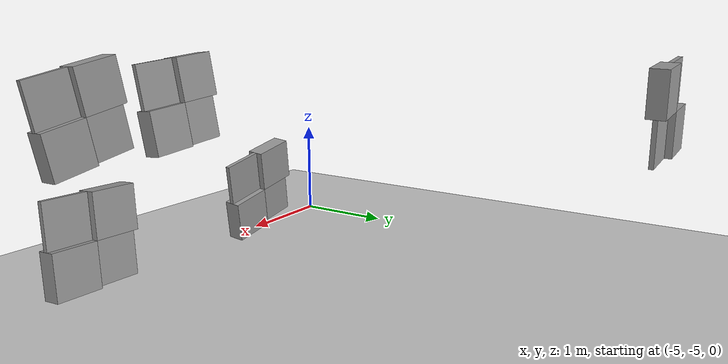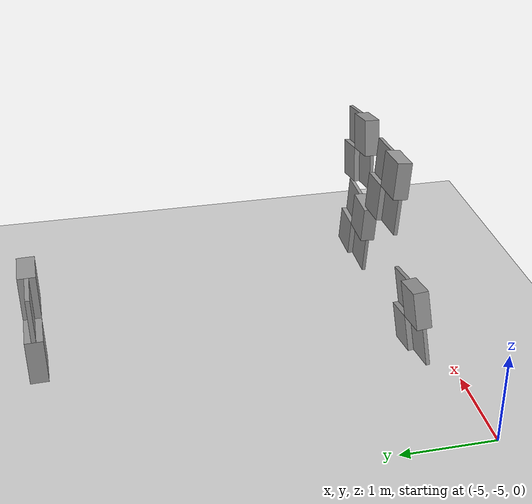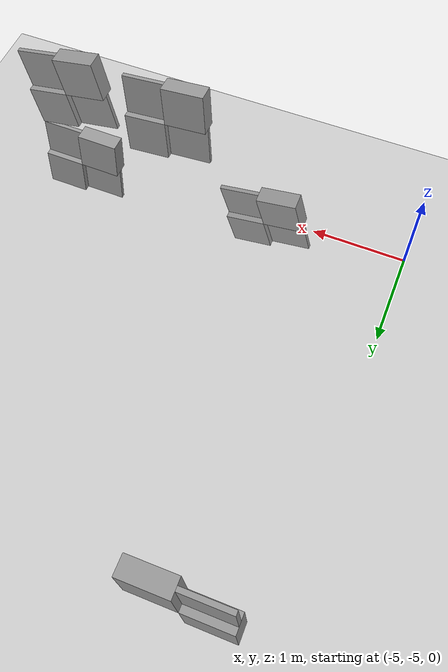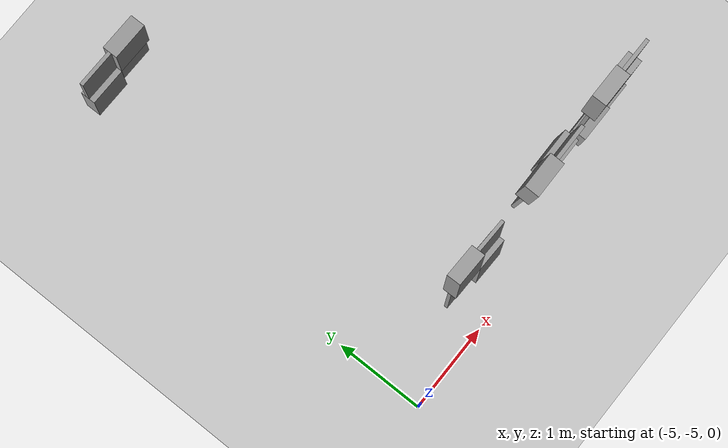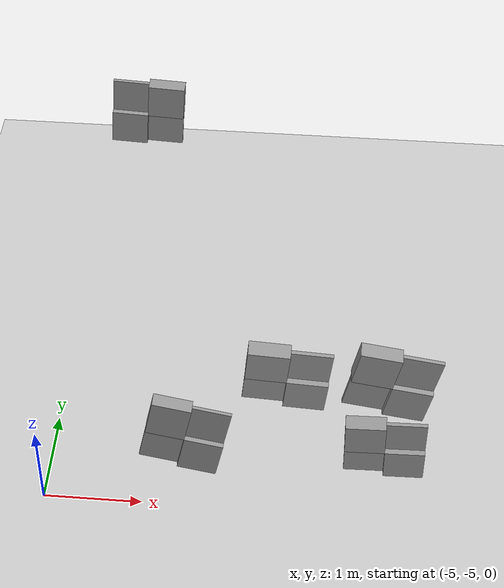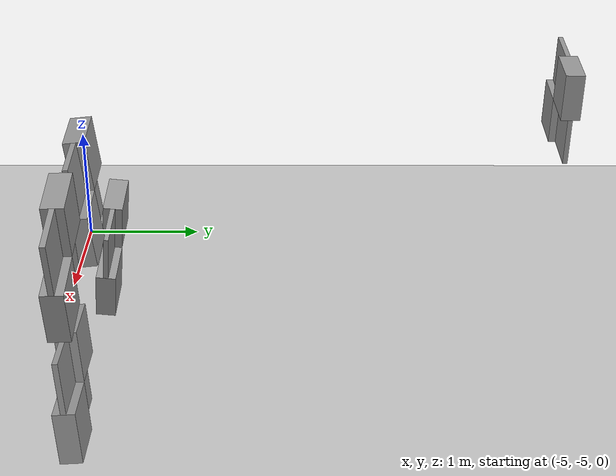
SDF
<sdf version="1.7">
 <world name="default">
  <model name="ground_plane">
   <static>1</static>
   <link name="link">
    <collision name="collision">
     <geometry><plane><normal>0 0 1</normal><size>100 100</size></plane></geometry>
     <surface>
      <contact><collide_bitmask>65535</collide_bitmask></contact>
      <friction><ode><mu>100</mu><mu2>50</mu2></ode></friction>
     </surface>
    </collision>
    <visual name="visual">
     <cast_shadows>0</cast_shadows>
     <geometry><plane><normal>0 0 1</normal><size>100 100</size></plane></geometry>
     <material>
      <script><uri>file://media/materials/scripts/gazebo.material</uri><name>Gazebo/Grey</name></script>
     </material>
    </visual>
   </link>
  </model>
  <model name="wall_slate_15">
   <static>1</static>
   <link name="link_0">
    <inertial><mass>1</mass></inertial>
    <gravity>0</gravity>
    <visual name="visual">
     <pose>0 0.2 0.2 0 -0 0</pose>
     <geometry><box><size>0.16 0.4 0.4</size></box></geometry>
     <material>
      <lighting>1</lighting>
      <script><uri>file://media/materials/scripts/gazebo.material</uri><name>Gazebo/Grey</name></script>
      <shader type="pixel"><normal_map>__default__</normal_map></shader>
      <ambient>0.3 0.3 0.3 1</ambient>
      <diffuse>0.7 0.7 0.7 1</diffuse>
      <specular>0.01 0.01 0.01 1</specular>
      <emissive>0 0 0 1</emissive>
     </material>
    </visual>
    <visual name="ModelPreview_0::link_0::visual_1">
     <pose>0 0.2 -0.2 0 -0 0</pose>
     <geometry><box><size>0.04 0.4 0.4</size></box></geometry>
     <material>
      <lighting>1</lighting>
      <script><uri>file://media/materials/scripts/gazebo.material</uri><name>Gazebo/Grey</name></script>
      <shader type="pixel"><normal_map>__default__</normal_map></shader>
      <ambient>0.3 0.3 0.3 1</ambient>
      <diffuse>0.7 0.7 0.7 1</diffuse>
      <specular>0.01 0.01 0.01 1</specular>
      <emissive>0 0 0 1</emissive>
     </material>
    </visual>
    <visual name="ModelPreview_0::link_0::visual_2">
     <pose>0 -0.2 0.2 0 -0 0</pose>
     <geometry><box><size>0.04 0.4 0.4</size></box></geometry>
     <material>
      <lighting>1</lighting>
      <script><uri>file://media/materials/scripts/gazebo.material</uri><name>Gazebo/Grey</name></script>
      <shader type="pixel"><normal_map>__default__</normal_map></shader>
      <ambient>0.3 0.3 0.3 1</ambient>
      <diffuse>0.7 0.7 0.7 1</diffuse>
      <specular>0.01 0.01 0.01 1</specular>
      <emissive>0 0 0 1</emissive>
     </material>
    </visual>
    <visual name="ModelPreview_0::link_0::visual_3">
     <pose>0 -0.2 -0.2 0 -0 0</pose>
     <geometry><box><size>0.16 0.4 0.4</size></box></geometry>
     <material>
      <lighting>1</lighting>
      <script><uri>file://media/materials/scripts/gazebo.material</uri><name>Gazebo/Grey</name></script>
      <shader type="pixel"><normal_map>__default__</normal_map></shader>
      <ambient>0.3 0.3 0.3 1</ambient>
      <diffuse>0.7 0.7 0.7 1</diffuse>
      <specular>0.01 0.01 0.01 1</specular>
      <emissive>0 0 0 1</emissive>
     </material>
    </visual>
    <collision name="collision_2">
     <pose>0 -0.2 0.2 0 -0 0</pose>
     <geometry><box><size>0.04 0.4 0.4</size></box></geometry>
     <surface>
      <friction>
       <ode><mu>1</mu><mu2>1</mu2><fdir1>0 0 0</fdir1><slip1>0</slip1><slip2>0</slip2></ode>
       <torsional>
        <coefficient>1</coefficient>
        <patch_radius>0</patch_radius>
        <surface_radius>0</surface_radius>
        <use_patch_radius>1</use_patch_radius>
        <ode><slip>0</slip></ode>
       </torsional>
      </friction>
      <bounce><restitution_coefficient>0</restitution_coefficient><threshold>1e+06</threshold></bounce>
      <contact>
       <collide_without_contact>0</collide_without_contact>
       <collide_without_contact_bitmask>1</collide_without_contact_bitmask>
       <collide_bitmask>1</collide_bitmask>
       <ode>
        <soft_cfm>0</soft_cfm>
        <soft_erp>0.2</soft_erp>
        <kp>1e+13</kp>
        <kd>1</kd>
        <max_vel>0.01</max_vel>
        <min_depth>0</min_depth>
       </ode>
       <bullet>
        <split_impulse>1</split_impulse>
        <split_impulse_penetration_threshold>-0.01</split_impulse_penetration_threshold>
        <soft_cfm>0</soft_cfm>
        <soft_erp>0.2</soft_erp>
        <kp>1e+13</kp>
        <kd>1</kd>
       </bullet>
      </contact>
     </surface>
    </collision>
    <collision name="collision_1">
     <pose>0 0.2 -0.2 0 -0 0</pose>
     <geometry><box><size>0.04 0.4 0.4</size></box></geometry>
     <surface>
      <friction>
       <ode><mu>1</mu><mu2>1</mu2><fdir1>0 0 0</fdir1><slip1>0</slip1><slip2>0</slip2></ode>
       <torsional>
        <coefficient>1</coefficient>
        <patch_radius>0</patch_radius>
        <surface_radius>0</surface_radius>
        <use_patch_radius>1</use_patch_radius>
        <ode><slip>0</slip></ode>
       </torsional>
      </friction>
      <bounce><restitution_coefficient>0</restitution_coefficient><threshold>1e+06</threshold></bounce>
      <contact>
       <collide_without_contact>0</collide_without_contact>
       <collide_without_contact_bitmask>1</collide_without_contact_bitmask>
       <collide_bitmask>1</collide_bitmask>
       <ode>
        <soft_cfm>0</soft_cfm>
        <soft_erp>0.2</soft_erp>
        <kp>1e+13</kp>
        <kd>1</kd>
        <max_vel>0.01</max_vel>
        <min_depth>0</min_depth>
       </ode>
       <bullet>
        <split_impulse>1</split_impulse>
        <split_impulse_penetration_threshold>-0.01</split_impulse_penetration_threshold>
        <soft_cfm>0</soft_cfm>
        <soft_erp>0.2</soft_erp>
        <kp>1e+13</kp>
        <kd>1</kd>
       </bullet>
      </contact>
     </surface>
    </collision>
    <collision name="collision_4">
     <pose>0 0.2 0.2 0 -0 0</pose>
     <geometry><box><size>0.16 0.4 0.4</size></box></geometry>
     <surface>
      <friction>
       <ode><mu>1</mu><mu2>1</mu2><fdir1>0 0 0</fdir1><slip1>0</slip1><slip2>0</slip2></ode>
       <torsional>
        <coefficient>1</coefficient>
        <patch_radius>0</patch_radius>
        <surface_radius>0</surface_radius>
        <use_patch_radius>1</use_patch_radius>
        <ode><slip>0</slip></ode>
       </torsional>
      </friction>
      <bounce><restitution_coefficient>0</restitution_coefficient><threshold>1e+06</threshold></bounce>
      <contact>
       <collide_without_contact>0</collide_without_contact>
       <collide_without_contact_bitmask>1</collide_without_contact_bitmask>
       <collide_bitmask>1</collide_bitmask>
       <ode>
        <soft_cfm>0</soft_cfm>
        <soft_erp>0.2</soft_erp>
        <kp>1e+13</kp>
        <kd>1</kd>
        <max_vel>0.01</max_vel>
        <min_depth>0</min_depth>
       </ode>
       <bullet>
        <split_impulse>1</split_impulse>
        <split_impulse_penetration_threshold>-0.01</split_impulse_penetration_threshold>
        <soft_cfm>0</soft_cfm>
        <soft_erp>0.2</soft_erp>
        <kp>1e+13</kp>
        <kd>1</kd>
       </bullet>
      </contact>
     </surface>
    </collision>
    <collision name="collision_3">
     <pose>0 -0.2 -0.2 0 -0 0</pose>
     <geometry><box><size>0.16 0.4 0.4</size></box></geometry>
     <surface>
      <friction>
       <ode><mu>1</mu><mu2>1</mu2><fdir1>0 0 0</fdir1><slip1>0</slip1><slip2>0</slip2></ode>
       <torsional>
        <coefficient>1</coefficient>
        <patch_radius>0</patch_radius>
        <surface_radius>0</surface_radius>
        <use_patch_radius>1</use_patch_radius>
        <ode><slip>0</slip></ode>
       </torsional>
      </friction>
      <bounce><restitution_coefficient>0</restitution_coefficient><threshold>1e+06</threshold></bounce>
      <contact>
       <collide_without_contact>0</collide_without_contact>
       <collide_without_contact_bitmask>1</collide_without_contact_bitmask>
       <collide_bitmask>1</collide_bitmask>
       <ode>
        <soft_cfm>0</soft_cfm>
        <soft_erp>0.2</soft_erp>
        <kp>1e+13</kp>
        <kd>1</kd>
        <max_vel>0.01</max_vel>
        <min_depth>0</min_depth>
       </ode>
       <bullet>
        <split_impulse>1</split_impulse>
        <split_impulse_penetration_threshold>-0.01</split_impulse_penetration_threshold>
        <soft_cfm>0</soft_cfm>
        <soft_erp>0.2</soft_erp>
        <kp>1e+13</kp>
        <kd>1</kd>
       </bullet>
      </contact>
     </surface>
    </collision>
   </link>
   <pose>-1.59149 -4.565 1.6 0.18 -0.02 1.5757</pose>
  </model>
  <model name="wall_slate_40">
   <static>1</static>
   <link name="link_0">
    <inertial><mass>1</mass></inertial>
    <gravity>0</gravity>
    <visual name="visual">
     <pose>0 0.2 0.2 0 -0 0</pose>
     <geometry><box><size>0.16 0.4 0.4</size></box></geometry>
     <material>
      <lighting>1</lighting>
      <script><uri>file://media/materials/scripts/gazebo.material</uri><name>Gazebo/Grey</name></script>
      <shader type="pixel"><normal_map>__default__</normal_map></shader>
      <ambient>0.3 0.3 0.3 1</ambient>
      <diffuse>0.7 0.7 0.7 1</diffuse>
      <specular>0.01 0.01 0.01 1</specular>
      <emissive>0 0 0 1</emissive>
     </material>
    </visual>
    <visual name="ModelPreview_0::link_0::visual_1">
     <pose>0 0.2 -0.2 0 -0 0</pose>
     <geometry><box><size>0.04 0.4 0.4</size></box></geometry>
     <material>
      <lighting>1</lighting>
      <script><uri>file://media/materials/scripts/gazebo.material</uri><name>Gazebo/Grey</name></script>
      <shader type="pixel"><normal_map>__default__</normal_map></shader>
      <ambient>0.3 0.3 0.3 1</ambient>
      <diffuse>0.7 0.7 0.7 1</diffuse>
      <specular>0.01 0.01 0.01 1</specular>
      <emissive>0 0 0 1</emissive>
     </material>
    </visual>
    <visual name="ModelPreview_0::link_0::visual_2">
     <pose>0 -0.2 0.2 0 -0 0</pose>
     <geometry><box><size>0.04 0.4 0.4</size></box></geometry>
     <material>
      <lighting>1</lighting>
      <script><uri>file://media/materials/scripts/gazebo.material</uri><name>Gazebo/Grey</name></script>
      <shader type="pixel"><normal_map>__default__</normal_map></shader>
      <ambient>0.3 0.3 0.3 1</ambient>
      <diffuse>0.7 0.7 0.7 1</diffuse>
      <specular>0.01 0.01 0.01 1</specular>
      <emissive>0 0 0 1</emissive>
     </material>
    </visual>
    <visual name="ModelPreview_0::link_0::visual_3">
     <pose>0 -0.2 -0.2 0 -0 0</pose>
     <geometry><box><size>0.16 0.4 0.4</size></box></geometry>
     <material>
      <lighting>1</lighting>
      <script><uri>file://media/materials/scripts/gazebo.material</uri><name>Gazebo/Grey</name></script>
      <shader type="pixel"><normal_map>__default__</normal_map></shader>
      <ambient>0.3 0.3 0.3 1</ambient>
      <diffuse>0.7 0.7 0.7 1</diffuse>
      <specular>0.01 0.01 0.01 1</specular>
      <emissive>0 0 0 1</emissive>
     </material>
    </visual>
    <collision name="collision_2">
     <pose>0 -0.2 0.2 0 -0 0</pose>
     <geometry><box><size>0.04 0.4 0.4</size></box></geometry>
     <surface>
      <friction>
       <ode><mu>1</mu><mu2>1</mu2><fdir1>0 0 0</fdir1><slip1>0</slip1><slip2>0</slip2></ode>
       <torsional>
        <coefficient>1</coefficient>
        <patch_radius>0</patch_radius>
        <surface_radius>0</surface_radius>
        <use_patch_radius>1</use_patch_radius>
        <ode><slip>0</slip></ode>
       </torsional>
      </friction>
      <bounce><restitution_coefficient>0</restitution_coefficient><threshold>1e+06</threshold></bounce>
      <contact>
       <collide_without_contact>0</collide_without_contact>
       <collide_without_contact_bitmask>1</collide_without_contact_bitmask>
       <collide_bitmask>1</collide_bitmask>
       <ode>
        <soft_cfm>0</soft_cfm>
        <soft_erp>0.2</soft_erp>
        <kp>1e+13</kp>
        <kd>1</kd>
        <max_vel>0.01</max_vel>
        <min_depth>0</min_depth>
       </ode>
       <bullet>
        <split_impulse>1</split_impulse>
        <split_impulse_penetration_threshold>-0.01</split_impulse_penetration_threshold>
        <soft_cfm>0</soft_cfm>
        <soft_erp>0.2</soft_erp>
        <kp>1e+13</kp>
        <kd>1</kd>
       </bullet>
      </contact>
     </surface>
    </collision>
    <collision name="collision_1">
     <pose>0 0.2 -0.2 0 -0 0</pose>
     <geometry><box><size>0.04 0.4 0.4</size></box></geometry>
     <surface>
      <friction>
       <ode><mu>1</mu><mu2>1</mu2><fdir1>0 0 0</fdir1><slip1>0</slip1><slip2>0</slip2></ode>
       <torsional>
        <coefficient>1</coefficient>
        <patch_radius>0</patch_radius>
        <surface_radius>0</surface_radius>
        <use_patch_radius>1</use_patch_radius>
        <ode><slip>0</slip></ode>
       </torsional>
      </friction>
      <bounce><restitution_coefficient>0</restitution_coefficient><threshold>1e+06</threshold></bounce>
      <contact>
       <collide_without_contact>0</collide_without_contact>
       <collide_without_contact_bitmask>1</collide_without_contact_bitmask>
       <collide_bitmask>1</collide_bitmask>
       <ode>
        <soft_cfm>0</soft_cfm>
        <soft_erp>0.2</soft_erp>
        <kp>1e+13</kp>
        <kd>1</kd>
        <max_vel>0.01</max_vel>
        <min_depth>0</min_depth>
       </ode>
       <bullet>
        <split_impulse>1</split_impulse>
        <split_impulse_penetration_threshold>-0.01</split_impulse_penetration_threshold>
        <soft_cfm>0</soft_cfm>
        <soft_erp>0.2</soft_erp>
        <kp>1e+13</kp>
        <kd>1</kd>
       </bullet>
      </contact>
     </surface>
    </collision>
    <collision name="collision_4">
     <pose>0 0.2 0.2 0 -0 0</pose>
     <geometry><box><size>0.16 0.4 0.4</size></box></geometry>
     <surface>
      <friction>
       <ode><mu>1</mu><mu2>1</mu2><fdir1>0 0 0</fdir1><slip1>0</slip1><slip2>0</slip2></ode>
       <torsional>
        <coefficient>1</coefficient>
        <patch_radius>0</patch_radius>
        <surface_radius>0</surface_radius>
        <use_patch_radius>1</use_patch_radius>
        <ode><slip>0</slip></ode>
       </torsional>
      </friction>
      <bounce><restitution_coefficient>0</restitution_coefficient><threshold>1e+06</threshold></bounce>
      <contact>
       <collide_without_contact>0</collide_without_contact>
       <collide_without_contact_bitmask>1</collide_without_contact_bitmask>
       <collide_bitmask>1</collide_bitmask>
       <ode>
        <soft_cfm>0</soft_cfm>
        <soft_erp>0.2</soft_erp>
        <kp>1e+13</kp>
        <kd>1</kd>
        <max_vel>0.01</max_vel>
        <min_depth>0</min_depth>
       </ode>
       <bullet>
        <split_impulse>1</split_impulse>
        <split_impulse_penetration_threshold>-0.01</split_impulse_penetration_threshold>
        <soft_cfm>0</soft_cfm>
        <soft_erp>0.2</soft_erp>
        <kp>1e+13</kp>
        <kd>1</kd>
       </bullet>
      </contact>
     </surface>
    </collision>
    <collision name="collision_3">
     <pose>0 -0.2 -0.2 0 -0 0</pose>
     <geometry><box><size>0.16 0.4 0.4</size></box></geometry>
     <surface>
      <friction>
       <ode><mu>1</mu><mu2>1</mu2><fdir1>0 0 0</fdir1><slip1>0</slip1><slip2>0</slip2></ode>
       <torsional>
        <coefficient>1</coefficient>
        <patch_radius>0</patch_radius>
        <surface_radius>0</surface_radius>
        <use_patch_radius>1</use_patch_radius>
        <ode><slip>0</slip></ode>
       </torsional>
      </friction>
      <bounce><restitution_coefficient>0</restitution_coefficient><threshold>1e+06</threshold></bounce>
      <contact>
       <collide_without_contact>0</collide_without_contact>
       <collide_without_contact_bitmask>1</collide_without_contact_bitmask>
       <collide_bitmask>1</collide_bitmask>
       <ode>
        <soft_cfm>0</soft_cfm>
        <soft_erp>0.2</soft_erp>
        <kp>1e+13</kp>
        <kd>1</kd>
        <max_vel>0.01</max_vel>
        <min_depth>0</min_depth>
       </ode>
       <bullet>
        <split_impulse>1</split_impulse>
        <split_impulse_penetration_threshold>-0.01</split_impulse_penetration_threshold>
        <soft_cfm>0</soft_cfm>
        <soft_erp>0.2</soft_erp>
        <kp>1e+13</kp>
        <kd>1</kd>
       </bullet>
      </contact>
     </surface>
    </collision>
   </link>
   <pose>-2.59149 -4.565 1.6 0.08 -0.1 1.5757</pose>
  </model>
  <model name="wall_slate_43">
   <static>1</static>
   <link name="link_0">
    <inertial><mass>1</mass></inertial>
    <gravity>0</gravity>
    <visual name="visual">
     <pose>0 0.2 0.2 0 -0 0</pose>
     <geometry><box><size>0.16 0.4 0.4</size></box></geometry>
     <material>
      <lighting>1</lighting>
      <script><uri>file://media/materials/scripts/gazebo.material</uri><name>Gazebo/Grey</name></script>
      <shader type="pixel"><normal_map>__default__</normal_map></shader>
      <ambient>0.3 0.3 0.3 1</ambient>
      <diffuse>0.7 0.7 0.7 1</diffuse>
      <specular>0.01 0.01 0.01 1</specular>
      <emissive>0 0 0 1</emissive>
     </material>
    </visual>
    <visual name="ModelPreview_0::link_0::visual_1">
     <pose>0 0.2 -0.2 0 -0 0</pose>
     <geometry><box><size>0.04 0.4 0.4</size></box></geometry>
     <material>
      <lighting>1</lighting>
      <script><uri>file://media/materials/scripts/gazebo.material</uri><name>Gazebo/Grey</name></script>
      <shader type="pixel"><normal_map>__default__</normal_map></shader>
      <ambient>0.3 0.3 0.3 1</ambient>
      <diffuse>0.7 0.7 0.7 1</diffuse>
      <specular>0.01 0.01 0.01 1</specular>
      <emissive>0 0 0 1</emissive>
     </material>
    </visual>
    <visual name="ModelPreview_0::link_0::visual_2">
     <pose>0 -0.2 0.2 0 -0 0</pose>
     <geometry><box><size>0.04 0.4 0.4</size></box></geometry>
     <material>
      <lighting>1</lighting>
      <script><uri>file://media/materials/scripts/gazebo.material</uri><name>Gazebo/Grey</name></script>
      <shader type="pixel"><normal_map>__default__</normal_map></shader>
      <ambient>0.3 0.3 0.3 1</ambient>
      <diffuse>0.7 0.7 0.7 1</diffuse>
      <specular>0.01 0.01 0.01 1</specular>
      <emissive>0 0 0 1</emissive>
     </material>
    </visual>
    <visual name="ModelPreview_0::link_0::visual_3">
     <pose>0 -0.2 -0.2 0 -0 0</pose>
     <geometry><box><size>0.16 0.4 0.4</size></box></geometry>
     <material>
      <lighting>1</lighting>
      <script><uri>file://media/materials/scripts/gazebo.material</uri><name>Gazebo/Grey</name></script>
      <shader type="pixel"><normal_map>__default__</normal_map></shader>
      <ambient>0.3 0.3 0.3 1</ambient>
      <diffuse>0.7 0.7 0.7 1</diffuse>
      <specular>0.01 0.01 0.01 1</specular>
      <emissive>0 0 0 1</emissive>
     </material>
    </visual>
    <collision name="collision_2">
     <pose>0 -0.2 0.2 0 -0 0</pose>
     <geometry><box><size>0.04 0.4 0.4</size></box></geometry>
     <surface>
      <friction>
       <ode><mu>1</mu><mu2>1</mu2><fdir1>0 0 0</fdir1><slip1>0</slip1><slip2>0</slip2></ode>
       <torsional>
        <coefficient>1</coefficient>
        <patch_radius>0</patch_radius>
        <surface_radius>0</surface_radius>
        <use_patch_radius>1</use_patch_radius>
        <ode><slip>0</slip></ode>
       </torsional>
      </friction>
      <bounce><restitution_coefficient>0</restitution_coefficient><threshold>1e+06</threshold></bounce>
      <contact>
       <collide_without_contact>0</collide_without_contact>
       <collide_without_contact_bitmask>1</collide_without_contact_bitmask>
       <collide_bitmask>1</collide_bitmask>
       <ode>
        <soft_cfm>0</soft_cfm>
        <soft_erp>0.2</soft_erp>
        <kp>1e+13</kp>
        <kd>1</kd>
        <max_vel>0.01</max_vel>
        <min_depth>0</min_depth>
       </ode>
       <bullet>
        <split_impulse>1</split_impulse>
        <split_impulse_penetration_threshold>-0.01</split_impulse_penetration_threshold>
        <soft_cfm>0</soft_cfm>
        <soft_erp>0.2</soft_erp>
        <kp>1e+13</kp>
        <kd>1</kd>
       </bullet>
      </contact>
     </surface>
    </collision>
    <collision name="collision_1">
     <pose>0 0.2 -0.2 0 -0 0</pose>
     <geometry><box><size>0.04 0.4 0.4</size></box></geometry>
     <surface>
      <friction>
       <ode><mu>1</mu><mu2>1</mu2><fdir1>0 0 0</fdir1><slip1>0</slip1><slip2>0</slip2></ode>
       <torsional>
        <coefficient>1</coefficient>
        <patch_radius>0</patch_radius>
        <surface_radius>0</surface_radius>
        <use_patch_radius>1</use_patch_radius>
        <ode><slip>0</slip></ode>
       </torsional>
      </friction>
      <bounce><restitution_coefficient>0</restitution_coefficient><threshold>1e+06</threshold></bounce>
      <contact>
       <collide_without_contact>0</collide_without_contact>
       <collide_without_contact_bitmask>1</collide_without_contact_bitmask>
       <collide_bitmask>1</collide_bitmask>
       <ode>
        <soft_cfm>0</soft_cfm>
        <soft_erp>0.2</soft_erp>
        <kp>1e+13</kp>
        <kd>1</kd>
        <max_vel>0.01</max_vel>
        <min_depth>0</min_depth>
       </ode>
       <bullet>
        <split_impulse>1</split_impulse>
        <split_impulse_penetration_threshold>-0.01</split_impulse_penetration_threshold>
        <soft_cfm>0</soft_cfm>
        <soft_erp>0.2</soft_erp>
        <kp>1e+13</kp>
        <kd>1</kd>
       </bullet>
      </contact>
     </surface>
    </collision>
    <collision name="collision_4">
     <pose>0 0.2 0.2 0 -0 0</pose>
     <geometry><box><size>0.16 0.4 0.4</size></box></geometry>
     <surface>
      <friction>
       <ode><mu>1</mu><mu2>1</mu2><fdir1>0 0 0</fdir1><slip1>0</slip1><slip2>0</slip2></ode>
       <torsional>
        <coefficient>1</coefficient>
        <patch_radius>0</patch_radius>
        <surface_radius>0</surface_radius>
        <use_patch_radius>1</use_patch_radius>
        <ode><slip>0</slip></ode>
       </torsional>
      </friction>
      <bounce><restitution_coefficient>0</restitution_coefficient><threshold>1e+06</threshold></bounce>
      <contact>
       <collide_without_contact>0</collide_without_contact>
       <collide_without_contact_bitmask>1</collide_without_contact_bitmask>
       <collide_bitmask>1</collide_bitmask>
       <ode>
        <soft_cfm>0</soft_cfm>
        <soft_erp>0.2</soft_erp>
        <kp>1e+13</kp>
        <kd>1</kd>
        <max_vel>0.01</max_vel>
        <min_depth>0</min_depth>
       </ode>
       <bullet>
        <split_impulse>1</split_impulse>
        <split_impulse_penetration_threshold>-0.01</split_impulse_penetration_threshold>
        <soft_cfm>0</soft_cfm>
        <soft_erp>0.2</soft_erp>
        <kp>1e+13</kp>
        <kd>1</kd>
       </bullet>
      </contact>
     </surface>
    </collision>
    <collision name="collision_3">
     <pose>0 -0.2 -0.2 0 -0 0</pose>
     <geometry><box><size>0.16 0.4 0.4</size></box></geometry>
     <surface>
      <friction>
       <ode><mu>1</mu><mu2>1</mu2><fdir1>0 0 0</fdir1><slip1>0</slip1><slip2>0</slip2></ode>
       <torsional>
        <coefficient>1</coefficient>
        <patch_radius>0</patch_radius>
        <surface_radius>0</surface_radius>
        <use_patch_radius>1</use_patch_radius>
        <ode><slip>0</slip></ode>
       </torsional>
      </friction>
      <bounce><restitution_coefficient>0</restitution_coefficient><threshold>1e+06</threshold></bounce>
      <contact>
       <collide_without_contact>0</collide_without_contact>
       <collide_without_contact_bitmask>1</collide_without_contact_bitmask>
       <collide_bitmask>1</collide_bitmask>
       <ode>
        <soft_cfm>0</soft_cfm>
        <soft_erp>0.2</soft_erp>
        <kp>1e+13</kp>
        <kd>1</kd>
        <max_vel>0.01</max_vel>
        <min_depth>0</min_depth>
       </ode>
       <bullet>
        <split_impulse>1</split_impulse>
        <split_impulse_penetration_threshold>-0.01</split_impulse_penetration_threshold>
        <soft_cfm>0</soft_cfm>
        <soft_erp>0.2</soft_erp>
        <kp>1e+13</kp>
        <kd>1</kd>
       </bullet>
      </contact>
     </surface>
    </collision>
   </link>
   <pose>-3.59149 -4.565 0.6 0.2 0.1 1.5757</pose>
  </model>
  <model name="wall_slate_67">
   <static>1</static>
   <link name="link_0">
    <inertial><mass>1</mass></inertial>
    <gravity>0</gravity>
    <visual name="visual">
     <pose>0 0.2 0.2 0 -0 0</pose>
     <geometry><box><size>0.16 0.4 0.4</size></box></geometry>
     <material>
      <lighting>1</lighting>
      <script><uri>file://media/materials/scripts/gazebo.material</uri><name>Gazebo/Grey</name></script>
      <shader type="pixel"><normal_map>__default__</normal_map></shader>
      <ambient>0.3 0.3 0.3 1</ambient>
      <diffuse>0.7 0.7 0.7 1</diffuse>
      <specular>0.01 0.01 0.01 1</specular>
      <emissive>0 0 0 1</emissive>
     </material>
    </visual>
    <visual name="ModelPreview_0::link_0::visual_1">
     <pose>0 0.2 -0.2 0 -0 0</pose>
     <geometry><box><size>0.04 0.4 0.4</size></box></geometry>
     <material>
      <lighting>1</lighting>
      <script><uri>file://media/materials/scripts/gazebo.material</uri><name>Gazebo/Grey</name></script>
      <shader type="pixel"><normal_map>__default__</normal_map></shader>
      <ambient>0.3 0.3 0.3 1</ambient>
      <diffuse>0.7 0.7 0.7 1</diffuse>
      <specular>0.01 0.01 0.01 1</specular>
      <emissive>0 0 0 1</emissive>
     </material>
    </visual>
    <visual name="ModelPreview_0::link_0::visual_2">
     <pose>0 -0.2 0.2 0 -0 0</pose>
     <geometry><box><size>0.04 0.4 0.4</size></box></geometry>
     <material>
      <lighting>1</lighting>
      <script><uri>file://media/materials/scripts/gazebo.material</uri><name>Gazebo/Grey</name></script>
      <shader type="pixel"><normal_map>__default__</normal_map></shader>
      <ambient>0.3 0.3 0.3 1</ambient>
      <diffuse>0.7 0.7 0.7 1</diffuse>
      <specular>0.01 0.01 0.01 1</specular>
      <emissive>0 0 0 1</emissive>
     </material>
    </visual>
    <visual name="ModelPreview_0::link_0::visual_3">
     <pose>0 -0.2 -0.2 0 -0 0</pose>
     <geometry><box><size>0.16 0.4 0.4</size></box></geometry>
     <material>
      <lighting>1</lighting>
      <script><uri>file://media/materials/scripts/gazebo.material</uri><name>Gazebo/Grey</name></script>
      <shader type="pixel"><normal_map>__default__</normal_map></shader>
      <ambient>0.3 0.3 0.3 1</ambient>
      <diffuse>0.7 0.7 0.7 1</diffuse>
      <specular>0.01 0.01 0.01 1</specular>
      <emissive>0 0 0 1</emissive>
     </material>
    </visual>
    <collision name="collision_2">
     <pose>0 -0.2 0.2 0 -0 0</pose>
     <geometry><box><size>0.04 0.4 0.4</size></box></geometry>
     <surface>
      <friction>
       <ode><mu>1</mu><mu2>1</mu2><fdir1>0 0 0</fdir1><slip1>0</slip1><slip2>0</slip2></ode>
       <torsional>
        <coefficient>1</coefficient>
        <patch_radius>0</patch_radius>
        <surface_radius>0</surface_radius>
        <use_patch_radius>1</use_patch_radius>
        <ode><slip>0</slip></ode>
       </torsional>
      </friction>
      <bounce><restitution_coefficient>0</restitution_coefficient><threshold>1e+06</threshold></bounce>
      <contact>
       <collide_without_contact>0</collide_without_contact>
       <collide_without_contact_bitmask>1</collide_without_contact_bitmask>
       <collide_bitmask>1</collide_bitmask>
       <ode>
        <soft_cfm>0</soft_cfm>
        <soft_erp>0.2</soft_erp>
        <kp>1e+13</kp>
        <kd>1</kd>
        <max_vel>0.01</max_vel>
        <min_depth>0</min_depth>
       </ode>
       <bullet>
        <split_impulse>1</split_impulse>
        <split_impulse_penetration_threshold>-0.01</split_impulse_penetration_threshold>
        <soft_cfm>0</soft_cfm>
        <soft_erp>0.2</soft_erp>
        <kp>1e+13</kp>
        <kd>1</kd>
       </bullet>
      </contact>
     </surface>
    </collision>
    <collision name="collision_1">
     <pose>0 0.2 -0.2 0 -0 0</pose>
     <geometry><box><size>0.04 0.4 0.4</size></box></geometry>
     <surface>
      <friction>
       <ode><mu>1</mu><mu2>1</mu2><fdir1>0 0 0</fdir1><slip1>0</slip1><slip2>0</slip2></ode>
       <torsional>
        <coefficient>1</coefficient>
        <patch_radius>0</patch_radius>
        <surface_radius>0</surface_radius>
        <use_patch_radius>1</use_patch_radius>
        <ode><slip>0</slip></ode>
       </torsional>
      </friction>
      <bounce><restitution_coefficient>0</restitution_coefficient><threshold>1e+06</threshold></bounce>
      <contact>
       <collide_without_contact>0</collide_without_contact>
       <collide_without_contact_bitmask>1</collide_without_contact_bitmask>
       <collide_bitmask>1</collide_bitmask>
       <ode>
        <soft_cfm>0</soft_cfm>
        <soft_erp>0.2</soft_erp>
        <kp>1e+13</kp>
        <kd>1</kd>
        <max_vel>0.01</max_vel>
        <min_depth>0</min_depth>
       </ode>
       <bullet>
        <split_impulse>1</split_impulse>
        <split_impulse_penetration_threshold>-0.01</split_impulse_penetration_threshold>
        <soft_cfm>0</soft_cfm>
        <soft_erp>0.2</soft_erp>
        <kp>1e+13</kp>
        <kd>1</kd>
       </bullet>
      </contact>
     </surface>
    </collision>
    <collision name="collision_4">
     <pose>0 0.2 0.2 0 -0 0</pose>
     <geometry><box><size>0.16 0.4 0.4</size></box></geometry>
     <surface>
      <friction>
       <ode><mu>1</mu><mu2>1</mu2><fdir1>0 0 0</fdir1><slip1>0</slip1><slip2>0</slip2></ode>
       <torsional>
        <coefficient>1</coefficient>
        <patch_radius>0</patch_radius>
        <surface_radius>0</surface_radius>
        <use_patch_radius>1</use_patch_radius>
        <ode><slip>0</slip></ode>
       </torsional>
      </friction>
      <bounce><restitution_coefficient>0</restitution_coefficient><threshold>1e+06</threshold></bounce>
      <contact>
       <collide_without_contact>0</collide_without_contact>
       <collide_without_contact_bitmask>1</collide_without_contact_bitmask>
       <collide_bitmask>1</collide_bitmask>
       <ode>
        <soft_cfm>0</soft_cfm>
        <soft_erp>0.2</soft_erp>
        <kp>1e+13</kp>
        <kd>1</kd>
        <max_vel>0.01</max_vel>
        <min_depth>0</min_depth>
       </ode>
       <bullet>
        <split_impulse>1</split_impulse>
        <split_impulse_penetration_threshold>-0.01</split_impulse_penetration_threshold>
        <soft_cfm>0</soft_cfm>
        <soft_erp>0.2</soft_erp>
        <kp>1e+13</kp>
        <kd>1</kd>
       </bullet>
      </contact>
     </surface>
    </collision>
    <collision name="collision_3">
     <pose>0 -0.2 -0.2 0 -0 0</pose>
     <geometry><box><size>0.16 0.4 0.4</size></box></geometry>
     <surface>
      <friction>
       <ode><mu>1</mu><mu2>1</mu2><fdir1>0 0 0</fdir1><slip1>0</slip1><slip2>0</slip2></ode>
       <torsional>
        <coefficient>1</coefficient>
        <patch_radius>0</patch_radius>
        <surface_radius>0</surface_radius>
        <use_patch_radius>1</use_patch_radius>
        <ode><slip>0</slip></ode>
       </torsional>
      </friction>
      <bounce><restitution_coefficient>0</restitution_coefficient><threshold>1e+06</threshold></bounce>
      <contact>
       <collide_without_contact>0</collide_without_contact>
       <collide_without_contact_bitmask>1</collide_without_contact_bitmask>
       <collide_bitmask>1</collide_bitmask>
       <ode>
        <soft_cfm>0</soft_cfm>
        <soft_erp>0.2</soft_erp>
        <kp>1e+13</kp>
        <kd>1</kd>
        <max_vel>0.01</max_vel>
        <min_depth>0</min_depth>
       </ode>
       <bullet>
        <split_impulse>1</split_impulse>
        <split_impulse_penetration_threshold>-0.01</split_impulse_penetration_threshold>
        <soft_cfm>0</soft_cfm>
        <soft_erp>0.2</soft_erp>
        <kp>1e+13</kp>
        <kd>1</kd>
       </bullet>
      </contact>
     </surface>
    </collision>
   </link>
   <pose>-1.59149 -4.565 0.6 -0.02 -0.06 1.5757</pose>
  </model>
  <model name="wall_slate_110">
   <static>1</static>
   <link name="link_0">
    <inertial><mass>1</mass></inertial>
    <gravity>0</gravity>
    <visual name="visual">
     <pose>0 0.2 0.2 0 -0 0</pose>
     <geometry><box><size>0.16 0.4 0.4</size></box></geometry>
     <material>
      <lighting>1</lighting>
      <script><uri>file://media/materials/scripts/gazebo.material</uri><name>Gazebo/Grey</name></script>
      <shader type="pixel"><normal_map>__default__</normal_map></shader>
      <ambient>0.3 0.3 0.3 1</ambient>
      <diffuse>0.7 0.7 0.7 1</diffuse>
      <specular>0.01 0.01 0.01 1</specular>
      <emissive>0 0 0 1</emissive>
     </material>
    </visual>
    <visual name="ModelPreview_0::link_0::visual_1">
     <pose>0 0.2 -0.2 0 -0 0</pose>
     <geometry><box><size>0.04 0.4 0.4</size></box></geometry>
     <material>
      <lighting>1</lighting>
      <script><uri>file://media/materials/scripts/gazebo.material</uri><name>Gazebo/Grey</name></script>
      <shader type="pixel"><normal_map>__default__</normal_map></shader>
      <ambient>0.3 0.3 0.3 1</ambient>
      <diffuse>0.7 0.7 0.7 1</diffuse>
      <specular>0.01 0.01 0.01 1</specular>
      <emissive>0 0 0 1</emissive>
     </material>
    </visual>
    <visual name="ModelPreview_0::link_0::visual_2">
     <pose>0 -0.2 0.2 0 -0 0</pose>
     <geometry><box><size>0.04 0.4 0.4</size></box></geometry>
     <material>
      <lighting>1</lighting>
      <script><uri>file://media/materials/scripts/gazebo.material</uri><name>Gazebo/Grey</name></script>
      <shader type="pixel"><normal_map>__default__</normal_map></shader>
      <ambient>0.3 0.3 0.3 1</ambient>
      <diffuse>0.7 0.7 0.7 1</diffuse>
      <specular>0.01 0.01 0.01 1</specular>
      <emissive>0 0 0 1</emissive>
     </material>
    </visual>
    <visual name="ModelPreview_0::link_0::visual_3">
     <pose>0 -0.2 -0.2 0 -0 0</pose>
     <geometry><box><size>0.16 0.4 0.4</size></box></geometry>
     <material>
      <lighting>1</lighting>
      <script><uri>file://media/materials/scripts/gazebo.material</uri><name>Gazebo/Grey</name></script>
      <shader type="pixel"><normal_map>__default__</normal_map></shader>
      <ambient>0.3 0.3 0.3 1</ambient>
      <diffuse>0.7 0.7 0.7 1</diffuse>
      <specular>0.01 0.01 0.01 1</specular>
      <emissive>0 0 0 1</emissive>
     </material>
    </visual>
    <collision name="collision_2">
     <pose>0 -0.2 0.2 0 -0 0</pose>
     <geometry><box><size>0.04 0.4 0.4</size></box></geometry>
     <surface>
      <friction>
       <ode><mu>1</mu><mu2>1</mu2><fdir1>0 0 0</fdir1><slip1>0</slip1><slip2>0</slip2></ode>
       <torsional>
        <coefficient>1</coefficient>
        <patch_radius>0</patch_radius>
        <surface_radius>0</surface_radius>
        <use_patch_radius>1</use_patch_radius>
        <ode><slip>0</slip></ode>
       </torsional>
      </friction>
      <bounce><restitution_coefficient>0</restitution_coefficient><threshold>1e+06</threshold></bounce>
      <contact>
       <collide_without_contact>0</collide_without_contact>
       <collide_without_contact_bitmask>1</collide_without_contact_bitmask>
       <collide_bitmask>1</collide_bitmask>
       <ode>
        <soft_cfm>0</soft_cfm>
        <soft_erp>0.2</soft_erp>
        <kp>1e+13</kp>
        <kd>1</kd>
        <max_vel>0.01</max_vel>
        <min_depth>0</min_depth>
       </ode>
       <bullet>
        <split_impulse>1</split_impulse>
        <split_impulse_penetration_threshold>-0.01</split_impulse_penetration_threshold>
        <soft_cfm>0</soft_cfm>
        <soft_erp>0.2</soft_erp>
        <kp>1e+13</kp>
        <kd>1</kd>
       </bullet>
      </contact>
     </surface>
    </collision>
    <collision name="collision_1">
     <pose>0 0.2 -0.2 0 -0 0</pose>
     <geometry><box><size>0.04 0.4 0.4</size></box></geometry>
     <surface>
      <friction>
       <ode><mu>1</mu><mu2>1</mu2><fdir1>0 0 0</fdir1><slip1>0</slip1><slip2>0</slip2></ode>
       <torsional>
        <coefficient>1</coefficient>
        <patch_radius>0</patch_radius>
        <surface_radius>0</surface_radius>
        <use_patch_radius>1</use_patch_radius>
        <ode><slip>0</slip></ode>
       </torsional>
      </friction>
      <bounce><restitution_coefficient>0</restitution_coefficient><threshold>1e+06</threshold></bounce>
      <contact>
       <collide_without_contact>0</collide_without_contact>
       <collide_without_contact_bitmask>1</collide_without_contact_bitmask>
       <collide_bitmask>1</collide_bitmask>
       <ode>
        <soft_cfm>0</soft_cfm>
        <soft_erp>0.2</soft_erp>
        <kp>1e+13</kp>
        <kd>1</kd>
        <max_vel>0.01</max_vel>
        <min_depth>0</min_depth>
       </ode>
       <bullet>
        <split_impulse>1</split_impulse>
        <split_impulse_penetration_threshold>-0.01</split_impulse_penetration_threshold>
        <soft_cfm>0</soft_cfm>
        <soft_erp>0.2</soft_erp>
        <kp>1e+13</kp>
        <kd>1</kd>
       </bullet>
      </contact>
     </surface>
    </collision>
    <collision name="collision_4">
     <pose>0 0.2 0.2 0 -0 0</pose>
     <geometry><box><size>0.16 0.4 0.4</size></box></geometry>
     <surface>
      <friction>
       <ode><mu>1</mu><mu2>1</mu2><fdir1>0 0 0</fdir1><slip1>0</slip1><slip2>0</slip2></ode>
       <torsional>
        <coefficient>1</coefficient>
        <patch_radius>0</patch_radius>
        <surface_radius>0</surface_radius>
        <use_patch_radius>1</use_patch_radius>
        <ode><slip>0</slip></ode>
       </torsional>
      </friction>
      <bounce><restitution_coefficient>0</restitution_coefficient><threshold>1e+06</threshold></bounce>
      <contact>
       <collide_without_contact>0</collide_without_contact>
       <collide_without_contact_bitmask>1</collide_without_contact_bitmask>
       <collide_bitmask>1</collide_bitmask>
       <ode>
        <soft_cfm>0</soft_cfm>
        <soft_erp>0.2</soft_erp>
        <kp>1e+13</kp>
        <kd>1</kd>
        <max_vel>0.01</max_vel>
        <min_depth>0</min_depth>
       </ode>
       <bullet>
        <split_impulse>1</split_impulse>
        <split_impulse_penetration_threshold>-0.01</split_impulse_penetration_threshold>
        <soft_cfm>0</soft_cfm>
        <soft_erp>0.2</soft_erp>
        <kp>1e+13</kp>
        <kd>1</kd>
       </bullet>
      </contact>
     </surface>
    </collision>
    <collision name="collision_3">
     <pose>0 -0.2 -0.2 0 -0 0</pose>
     <geometry><box><size>0.16 0.4 0.4</size></box></geometry>
     <surface>
      <friction>
       <ode><mu>1</mu><mu2>1</mu2><fdir1>0 0 0</fdir1><slip1>0</slip1><slip2>0</slip2></ode>
       <torsional>
        <coefficient>1</coefficient>
        <patch_radius>0</patch_radius>
        <surface_radius>0</surface_radius>
        <use_patch_radius>1</use_patch_radius>
        <ode><slip>0</slip></ode>
       </torsional>
      </friction>
      <bounce><restitution_coefficient>0</restitution_coefficient><threshold>1e+06</threshold></bounce>
      <contact>
       <collide_without_contact>0</collide_without_contact>
       <collide_without_contact_bitmask>1</collide_without_contact_bitmask>
       <collide_bitmask>1</collide_bitmask>
       <ode>
        <soft_cfm>0</soft_cfm>
        <soft_erp>0.2</soft_erp>
        <kp>1e+13</kp>
        <kd>1</kd>
        <max_vel>0.01</max_vel>
        <min_depth>0</min_depth>
       </ode>
       <bullet>
        <split_impulse>1</split_impulse>
        <split_impulse_penetration_threshold>-0.01</split_impulse_penetration_threshold>
        <soft_cfm>0</soft_cfm>
        <soft_erp>0.2</soft_erp>
        <kp>1e+13</kp>
        <kd>1</kd>
       </bullet>
      </contact>
     </surface>
    </collision>
   </link>
   <pose>-4.37149 -0.783824 1.6 -0.06 -0.02 -1.5659</pose>
  </model>
 </world>
</sdf>
